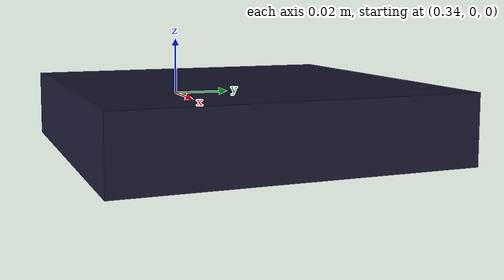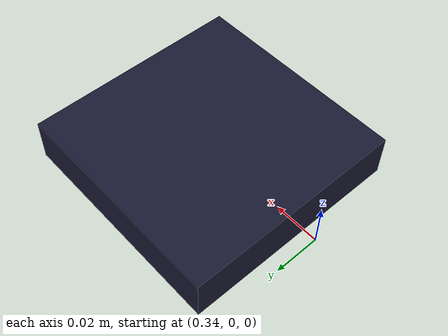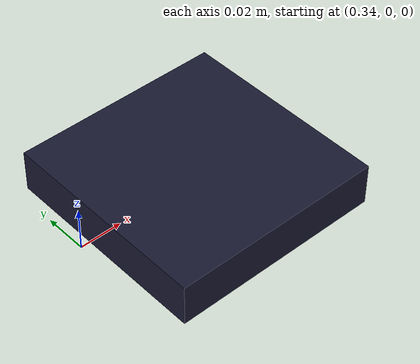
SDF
<?xml version='1.0'?>
<sdf version='1.5'>
<model name="payload_item">
        <static>false</static>

<link name="payload_item_box">
    <pose> 0.4 0  0 0  0  0</pose>
	  <gravity>1</gravity>
    <inertial>
        <inertia>
          <ixx>0.1</ixx>
          <ixy>0</ixy>
          <ixz>0</ixz>
          <iyy>0.1</iyy>
          <iyz>0</iyz>
          <izz>0.05</izz>
        </inertia>
        <mass>0.3</mass>
    </inertial>

    <collision name="collision_payload_item">
        <geometry>
          <box>
            <size>0.1 0.1 0.02</size>
            </box>
        </geometry>
    </collision>

    <visual name="visual_payload_item">
        <geometry>
          <box>
            <size>0.1 0.1 0.02</size>
            </box>
        </geometry>
        <material>
          <ambient>0.1 0.1 0.1 1</ambient>
          <diffuse>0.1 0.1 0.2 1</diffuse>
          <specular>0 0 0 0</specular>
          <emissive>0 0 0 1</emissive>
        </material>
    </visual>

</link>

</model>

</sdf>
